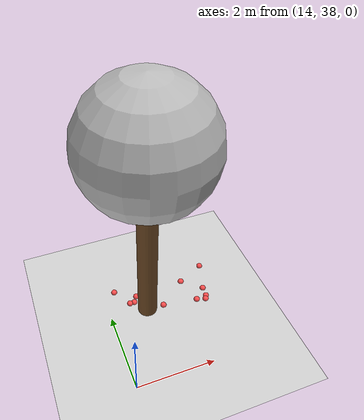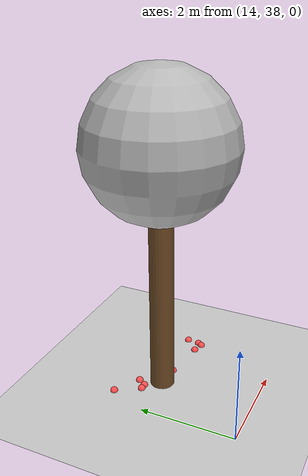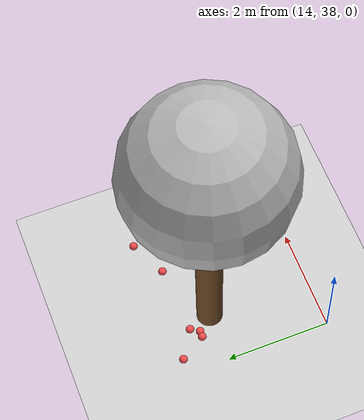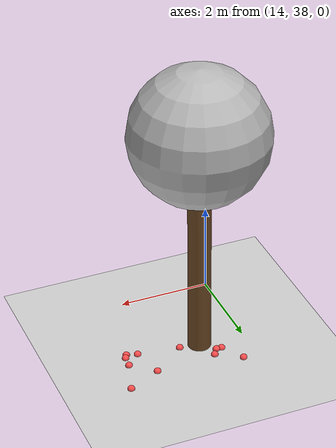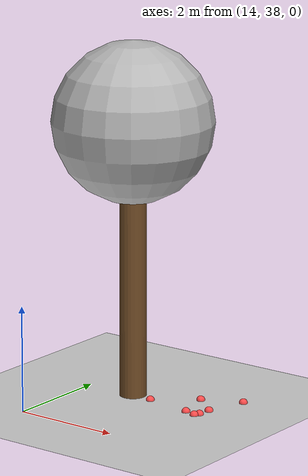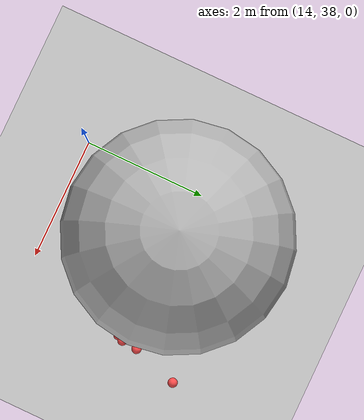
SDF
<sdf version="1.7">
 <world name="default">
  <model name="ground_plane">
   <static>1</static>
   <link name="link">
    <collision name="collision">
     <geometry><plane><normal>0 0 1</normal><size>100 100</size></plane></geometry>
     <surface>
      <contact><collide_bitmask>65535</collide_bitmask></contact>
      <friction><ode><mu>100</mu><mu2>50</mu2></ode></friction>
     </surface>
    </collision>
    <visual name="visual">
     <cast_shadows>0</cast_shadows>
     <geometry><plane><normal>0 0 1</normal><size>100 100</size></plane></geometry>
     <material>
      <script><uri>file://media/materials/scripts/gazebo.material</uri><name>Gazebo/Grey</name></script>
     </material>
    </visual>
   </link>
  </model>
  <model name="tree_simple_14">
   <static>1</static>
   <link name="link">
    <pose>0 0 0.1 0 -0 0</pose>
    <inertial>
     <mass>666</mass>
     <inertia>
      <ixx>0.0861167</ixx>
      <ixy>0</ixy>
      <ixz>0</ixz>
      <iyy>0.0861167</iyy>
      <iyz>0</iyz>
      <izz>0.0861167</izz>
     </inertia>
    </inertial>
    <collision name="collision_trunk">
     <pose>0 0 2 0 -0 0</pose>
     <geometry><cylinder><radius>0.25</radius><length>4</length></cylinder></geometry>
     <surface>
      <contact>
       <poissons_ratio>0.347</poissons_ratio>
       <elastic_modulus>8.8e+09</elastic_modulus>
       <ode><kp>100000</kp><kd>100</kd><max_vel>100</max_vel><min_depth>0.001</min_depth></ode>
      </contact>
      <friction>
       <torsional>
        <coefficient>1</coefficient>
        <use_patch_radius>0</use_patch_radius>
        <surface_radius>0.01</surface_radius>
       </torsional>
      </friction>
     </surface>
    </collision>
    <collision name="collision_treetop">
     <pose>0 0 5.2 0 -0 0</pose>
     <geometry><sphere><radius>1.5</radius></sphere></geometry>
     <surface>
      <contact>
       <poissons_ratio>0.347</poissons_ratio>
       <elastic_modulus>8.8e+09</elastic_modulus>
       <ode><kp>100000</kp><kd>100</kd><max_vel>100</max_vel><min_depth>0.001</min_depth></ode>
      </contact>
      <friction>
       <torsional>
        <coefficient>1</coefficient>
        <use_patch_radius>0</use_patch_radius>
        <surface_radius>0.01</surface_radius>
       </torsional>
      </friction>
     </surface>
    </collision>
    <visual name="trunk">
     <pose>0 0 2 0 -0 0</pose>
     <geometry><cylinder><radius>0.25</radius><length>4</length></cylinder></geometry>
     <material>
      <script>
       <uri>model://tree_simple/scripts</uri>
       <uri>model://tree_simple/materials/textures</uri>
       <name>TreeSimple/Trunk</name>
      </script>
     </material>
    </visual>
    <visual name="treetop">
     <pose>0 0 5.2 0 -0 0</pose>
     <geometry><sphere><radius>1.5</radius></sphere></geometry>
     <material>
      <script>
       <uri>model://tree_simple/scripts</uri>
       <uri>model://tree_simple/materials/textures</uri>
       <name>TreeSimple/Treetop</name>
      </script>
     </material>
    </visual>
   </link>
   <pose>15 40 -0.1 0 -0 0</pose>
  </model>
  <model name="seed_red_51">
   <link name="link">
    <inertial>
     <mass>1</mass>
     <inertia><ixx>0.1</ixx><ixy>0</ixy><ixz>0</ixz><iyy>0.1</iyy><iyz>0</iyz><izz>0.1</izz></inertia>
    </inertial>
    <visual name="visual">
     <geometry><sphere><radius>0.08</radius></sphere></geometry>
     <material>
      <script><name>Gazebo/Grey</name><uri>file://media/materials/scripts/gazebo.material</uri></script>
      <shader type="pixel"><normal_map>__default__</normal_map></shader>
      <ambient>1 0.3 0.3 1</ambient>
      <diffuse>0.7 0.7 0.7 1</diffuse>
      <specular>0.01 0.01 0.01 1</specular>
      <emissive>0 0 0 1</emissive>
     </material>
    </visual>
    <collision name="collision">
     <geometry><sphere><radius>0.0005</radius></sphere></geometry>
     <surface>
      <friction>
       <ode><mu>1</mu><mu2>1</mu2><fdir1>0 0 0</fdir1><slip1>0</slip1><slip2>0</slip2></ode>
       <torsional>
        <coefficient>1</coefficient>
        <patch_radius>0</patch_radius>
        <surface_radius>0</surface_radius>
        <use_patch_radius>1</use_patch_radius>
        <ode><slip>0</slip></ode>
       </torsional>
      </friction>
      <bounce><restitution_coefficient>0</restitution_coefficient><threshold>1e+06</threshold></bounce>
      <contact>
       <collide_without_contact>0</collide_without_contact>
       <collide_without_contact_bitmask>1</collide_without_contact_bitmask>
       <collide_bitmask>1</collide_bitmask>
       <ode>
        <soft_cfm>0</soft_cfm>
        <soft_erp>0.2</soft_erp>
        <kp>1e+13</kp>
        <kd>1</kd>
        <max_vel>0.01</max_vel>
        <min_depth>0</min_depth>
       </ode>
       <bullet>
        <split_impulse>1</split_impulse>
        <split_impulse_penetration_threshold>-0.01</split_impulse_penetration_threshold>
        <soft_cfm>0</soft_cfm>
        <soft_erp>0.2</soft_erp>
        <kp>1e+13</kp>
        <kd>1</kd>
       </bullet>
      </contact>
     </surface>
    </collision>
   </link>
   <static>0</static>
   <pose>14.8393 40.4631 0.0005 0 -0 0</pose>
  </model>
  <model name="seed_red_52">
   <link name="link">
    <inertial>
     <mass>1</mass>
     <inertia><ixx>0.1</ixx><ixy>0</ixy><ixz>0</ixz><iyy>0.1</iyy><iyz>0</iyz><izz>0.1</izz></inertia>
    </inertial>
    <visual name="visual">
     <geometry><sphere><radius>0.08</radius></sphere></geometry>
     <material>
      <script><name>Gazebo/Grey</name><uri>file://media/materials/scripts/gazebo.material</uri></script>
      <shader type="pixel"><normal_map>__default__</normal_map></shader>
      <ambient>1 0.3 0.3 1</ambient>
      <diffuse>0.7 0.7 0.7 1</diffuse>
      <specular>0.01 0.01 0.01 1</specular>
      <emissive>0 0 0 1</emissive>
     </material>
    </visual>
    <collision name="collision">
     <geometry><sphere><radius>0.0005</radius></sphere></geometry>
     <surface>
      <friction>
       <ode><mu>1</mu><mu2>1</mu2><fdir1>0 0 0</fdir1><slip1>0</slip1><slip2>0</slip2></ode>
       <torsional>
        <coefficient>1</coefficient>
        <patch_radius>0</patch_radius>
        <surface_radius>0</surface_radius>
        <use_patch_radius>1</use_patch_radius>
        <ode><slip>0</slip></ode>
       </torsional>
      </friction>
      <bounce><restitution_coefficient>0</restitution_coefficient><threshold>1e+06</threshold></bounce>
      <contact>
       <collide_without_contact>0</collide_without_contact>
       <collide_without_contact_bitmask>1</collide_without_contact_bitmask>
       <collide_bitmask>1</collide_bitmask>
       <ode>
        <soft_cfm>0</soft_cfm>
        <soft_erp>0.2</soft_erp>
        <kp>1e+13</kp>
        <kd>1</kd>
        <max_vel>0.01</max_vel>
        <min_depth>0</min_depth>
       </ode>
       <bullet>
        <split_impulse>1</split_impulse>
        <split_impulse_penetration_threshold>-0.01</split_impulse_penetration_threshold>
        <soft_cfm>0</soft_cfm>
        <soft_erp>0.2</soft_erp>
        <kp>1e+13</kp>
        <kd>1</kd>
       </bullet>
      </contact>
     </surface>
    </collision>
   </link>
   <static>0</static>
   <pose>14.3144 40.7948 0.0005 0 -0 0</pose>
  </model>
  <model name="seed_red_53">
   <link name="link">
    <inertial>
     <mass>1</mass>
     <inertia><ixx>0.1</ixx><ixy>0</ixy><ixz>0</ixz><iyy>0.1</iyy><iyz>0</iyz><izz>0.1</izz></inertia>
    </inertial>
    <visual name="visual">
     <geometry><sphere><radius>0.08</radius></sphere></geometry>
     <material>
      <script><name>Gazebo/Grey</name><uri>file://media/materials/scripts/gazebo.material</uri></script>
      <shader type="pixel"><normal_map>__default__</normal_map></shader>
      <ambient>1 0.3 0.3 1</ambient>
      <diffuse>0.7 0.7 0.7 1</diffuse>
      <specular>0.01 0.01 0.01 1</specular>
      <emissive>0 0 0 1</emissive>
     </material>
    </visual>
    <collision name="collision">
     <geometry><sphere><radius>0.0005</radius></sphere></geometry>
     <surface>
      <friction>
       <ode><mu>1</mu><mu2>1</mu2><fdir1>0 0 0</fdir1><slip1>0</slip1><slip2>0</slip2></ode>
       <torsional>
        <coefficient>1</coefficient>
        <patch_radius>0</patch_radius>
        <surface_radius>0</surface_radius>
        <use_patch_radius>1</use_patch_radius>
        <ode><slip>0</slip></ode>
       </torsional>
      </friction>
      <bounce><restitution_coefficient>0</restitution_coefficient><threshold>1e+06</threshold></bounce>
      <contact>
       <collide_without_contact>0</collide_without_contact>
       <collide_without_contact_bitmask>1</collide_without_contact_bitmask>
       <collide_bitmask>1</collide_bitmask>
       <ode>
        <soft_cfm>0</soft_cfm>
        <soft_erp>0.2</soft_erp>
        <kp>1e+13</kp>
        <kd>1</kd>
        <max_vel>0.01</max_vel>
        <min_depth>0</min_depth>
       </ode>
       <bullet>
        <split_impulse>1</split_impulse>
        <split_impulse_penetration_threshold>-0.01</split_impulse_penetration_threshold>
        <soft_cfm>0</soft_cfm>
        <soft_erp>0.2</soft_erp>
        <kp>1e+13</kp>
        <kd>1</kd>
       </bullet>
      </contact>
     </surface>
    </collision>
   </link>
   <static>0</static>
   <pose>14.7315 40.2999 0.0005 0 -0 0</pose>
  </model>
  <model name="seed_red_54">
   <link name="link">
    <inertial>
     <mass>1</mass>
     <inertia><ixx>0.1</ixx><ixy>0</ixy><ixz>0</ixz><iyy>0.1</iyy><iyz>0</iyz><izz>0.1</izz></inertia>
    </inertial>
    <visual name="visual">
     <geometry><sphere><radius>0.08</radius></sphere></geometry>
     <material>
      <script><name>Gazebo/Grey</name><uri>file://media/materials/scripts/gazebo.material</uri></script>
      <shader type="pixel"><normal_map>__default__</normal_map></shader>
      <ambient>1 0.3 0.3 1</ambient>
      <diffuse>0.7 0.7 0.7 1</diffuse>
      <specular>0.01 0.01 0.01 1</specular>
      <emissive>0 0 0 1</emissive>
     </material>
    </visual>
    <collision name="collision">
     <geometry><sphere><radius>0.0005</radius></sphere></geometry>
     <surface>
      <friction>
       <ode><mu>1</mu><mu2>1</mu2><fdir1>0 0 0</fdir1><slip1>0</slip1><slip2>0</slip2></ode>
       <torsional>
        <coefficient>1</coefficient>
        <patch_radius>0</patch_radius>
        <surface_radius>0</surface_radius>
        <use_patch_radius>1</use_patch_radius>
        <ode><slip>0</slip></ode>
       </torsional>
      </friction>
      <bounce><restitution_coefficient>0</restitution_coefficient><threshold>1e+06</threshold></bounce>
      <contact>
       <collide_without_contact>0</collide_without_contact>
       <collide_without_contact_bitmask>1</collide_without_contact_bitmask>
       <collide_bitmask>1</collide_bitmask>
       <ode>
        <soft_cfm>0</soft_cfm>
        <soft_erp>0.2</soft_erp>
        <kp>1e+13</kp>
        <kd>1</kd>
        <max_vel>0.01</max_vel>
        <min_depth>0</min_depth>
       </ode>
       <bullet>
        <split_impulse>1</split_impulse>
        <split_impulse_penetration_threshold>-0.01</split_impulse_penetration_threshold>
        <soft_cfm>0</soft_cfm>
        <soft_erp>0.2</soft_erp>
        <kp>1e+13</kp>
        <kd>1</kd>
       </bullet>
      </contact>
     </surface>
    </collision>
   </link>
   <static>0</static>
   <pose>14.6126 40.3013 0.0005 0 -0 0</pose>
  </model>
  <model name="seed_red_55">
   <link name="link">
    <inertial>
     <mass>1</mass>
     <inertia><ixx>0.1</ixx><ixy>0</ixy><ixz>0</ixz><iyy>0.1</iyy><iyz>0</iyz><izz>0.1</izz></inertia>
    </inertial>
    <visual name="visual">
     <geometry><sphere><radius>0.08</radius></sphere></geometry>
     <material>
      <script><name>Gazebo/Grey</name><uri>file://media/materials/scripts/gazebo.material</uri></script>
      <shader type="pixel"><normal_map>__default__</normal_map></shader>
      <ambient>1 0.3 0.3 1</ambient>
      <diffuse>0.7 0.7 0.7 1</diffuse>
      <specular>0.01 0.01 0.01 1</specular>
      <emissive>0 0 0 1</emissive>
     </material>
    </visual>
    <collision name="collision">
     <geometry><sphere><radius>0.0005</radius></sphere></geometry>
     <surface>
      <friction>
       <ode><mu>1</mu><mu2>1</mu2><fdir1>0 0 0</fdir1><slip1>0</slip1><slip2>0</slip2></ode>
       <torsional>
        <coefficient>1</coefficient>
        <patch_radius>0</patch_radius>
        <surface_radius>0</surface_radius>
        <use_patch_radius>1</use_patch_radius>
        <ode><slip>0</slip></ode>
       </torsional>
      </friction>
      <bounce><restitution_coefficient>0</restitution_coefficient><threshold>1e+06</threshold></bounce>
      <contact>
       <collide_without_contact>0</collide_without_contact>
       <collide_without_contact_bitmask>1</collide_without_contact_bitmask>
       <collide_bitmask>1</collide_bitmask>
       <ode>
        <soft_cfm>0</soft_cfm>
        <soft_erp>0.2</soft_erp>
        <kp>1e+13</kp>
        <kd>1</kd>
        <max_vel>0.01</max_vel>
        <min_depth>0</min_depth>
       </ode>
       <bullet>
        <split_impulse>1</split_impulse>
        <split_impulse_penetration_threshold>-0.01</split_impulse_penetration_threshold>
        <soft_cfm>0</soft_cfm>
        <soft_erp>0.2</soft_erp>
        <kp>1e+13</kp>
        <kd>1</kd>
       </bullet>
      </contact>
     </surface>
    </collision>
   </link>
   <static>0</static>
   <pose>16.1782 40.5229 0.0005 0 -0 0</pose>
  </model>
  <model name="seed_red_56">
   <link name="link">
    <inertial>
     <mass>1</mass>
     <inertia><ixx>0.1</ixx><ixy>0</ixy><ixz>0</ixz><iyy>0.1</iyy><iyz>0</iyz><izz>0.1</izz></inertia>
    </inertial>
    <visual name="visual">
     <geometry><sphere><radius>0.08</radius></sphere></geometry>
     <material>
      <script><name>Gazebo/Grey</name><uri>file://media/materials/scripts/gazebo.material</uri></script>
      <shader type="pixel"><normal_map>__default__</normal_map></shader>
      <ambient>1 0.3 0.3 1</ambient>
      <diffuse>0.7 0.7 0.7 1</diffuse>
      <specular>0.01 0.01 0.01 1</specular>
      <emissive>0 0 0 1</emissive>
     </material>
    </visual>
    <collision name="collision">
     <geometry><sphere><radius>0.0005</radius></sphere></geometry>
     <surface>
      <friction>
       <ode><mu>1</mu><mu2>1</mu2><fdir1>0 0 0</fdir1><slip1>0</slip1><slip2>0</slip2></ode>
       <torsional>
        <coefficient>1</coefficient>
        <patch_radius>0</patch_radius>
        <surface_radius>0</surface_radius>
        <use_patch_radius>1</use_patch_radius>
        <ode><slip>0</slip></ode>
       </torsional>
      </friction>
      <bounce><restitution_coefficient>0</restitution_coefficient><threshold>1e+06</threshold></bounce>
      <contact>
       <collide_without_contact>0</collide_without_contact>
       <collide_without_contact_bitmask>1</collide_without_contact_bitmask>
       <collide_bitmask>1</collide_bitmask>
       <ode>
        <soft_cfm>0</soft_cfm>
        <soft_erp>0.2</soft_erp>
        <kp>1e+13</kp>
        <kd>1</kd>
        <max_vel>0.01</max_vel>
        <min_depth>0</min_depth>
       </ode>
       <bullet>
        <split_impulse>1</split_impulse>
        <split_impulse_penetration_threshold>-0.01</split_impulse_penetration_threshold>
        <soft_cfm>0</soft_cfm>
        <soft_erp>0.2</soft_erp>
        <kp>1e+13</kp>
        <kd>1</kd>
       </bullet>
      </contact>
     </surface>
    </collision>
   </link>
   <static>0</static>
   <pose>15.4368 39.9526 0.0005 0 -0 0</pose>
  </model>
  <model name="seed_red_57">
   <link name="link">
    <inertial>
     <mass>1</mass>
     <inertia><ixx>0.1</ixx><ixy>0</ixy><ixz>0</ixz><iyy>0.1</iyy><iyz>0</iyz><izz>0.1</izz></inertia>
    </inertial>
    <visual name="visual">
     <geometry><sphere><radius>0.08</radius></sphere></geometry>
     <material>
      <script><name>Gazebo/Grey</name><uri>file://media/materials/scripts/gazebo.material</uri></script>
      <shader type="pixel"><normal_map>__default__</normal_map></shader>
      <ambient>1 0.3 0.3 1</ambient>
      <diffuse>0.7 0.7 0.7 1</diffuse>
      <specular>0.01 0.01 0.01 1</specular>
      <emissive>0 0 0 1</emissive>
     </material>
    </visual>
    <collision name="collision">
     <geometry><sphere><radius>0.0005</radius></sphere></geometry>
     <surface>
      <friction>
       <ode><mu>1</mu><mu2>1</mu2><fdir1>0 0 0</fdir1><slip1>0</slip1><slip2>0</slip2></ode>
       <torsional>
        <coefficient>1</coefficient>
        <patch_radius>0</patch_radius>
        <surface_radius>0</surface_radius>
        <use_patch_radius>1</use_patch_radius>
        <ode><slip>0</slip></ode>
       </torsional>
      </friction>
      <bounce><restitution_coefficient>0</restitution_coefficient><threshold>1e+06</threshold></bounce>
      <contact>
       <collide_without_contact>0</collide_without_contact>
       <collide_without_contact_bitmask>1</collide_without_contact_bitmask>
       <collide_bitmask>1</collide_bitmask>
       <ode>
        <soft_cfm>0</soft_cfm>
        <soft_erp>0.2</soft_erp>
        <kp>1e+13</kp>
        <kd>1</kd>
        <max_vel>0.01</max_vel>
        <min_depth>0</min_depth>
       </ode>
       <bullet>
        <split_impulse>1</split_impulse>
        <split_impulse_penetration_threshold>-0.01</split_impulse_penetration_threshold>
        <soft_cfm>0</soft_cfm>
        <soft_erp>0.2</soft_erp>
        <kp>1e+13</kp>
        <kd>1</kd>
       </bullet>
      </contact>
     </surface>
    </collision>
   </link>
   <static>0</static>
   <pose>16.6369 39.8442 0.0005 0 -0 0</pose>
  </model>
  <model name="seed_red_60">
   <link name="link">
    <inertial>
     <mass>1</mass>
     <inertia><ixx>0.1</ixx><ixy>0</ixy><ixz>0</ixz><iyy>0.1</iyy><iyz>0</iyz><izz>0.1</izz></inertia>
    </inertial>
    <visual name="visual">
     <geometry><sphere><radius>0.08</radius></sphere></geometry>
     <material>
      <script><name>Gazebo/Grey</name><uri>file://media/materials/scripts/gazebo.material</uri></script>
      <shader type="pixel"><normal_map>__default__</normal_map></shader>
      <ambient>1 0.3 0.3 1</ambient>
      <diffuse>0.7 0.7 0.7 1</diffuse>
      <specular>0.01 0.01 0.01 1</specular>
      <emissive>0 0 0 1</emissive>
     </material>
    </visual>
    <collision name="collision">
     <geometry><sphere><radius>0.0005</radius></sphere></geometry>
     <surface>
      <friction>
       <ode><mu>1</mu><mu2>1</mu2><fdir1>0 0 0</fdir1><slip1>0</slip1><slip2>0</slip2></ode>
       <torsional>
        <coefficient>1</coefficient>
        <patch_radius>0</patch_radius>
        <surface_radius>0</surface_radius>
        <use_patch_radius>1</use_patch_radius>
        <ode><slip>0</slip></ode>
       </torsional>
      </friction>
      <bounce><restitution_coefficient>0</restitution_coefficient><threshold>1e+06</threshold></bounce>
      <contact>
       <collide_without_contact>0</collide_without_contact>
       <collide_without_contact_bitmask>1</collide_without_contact_bitmask>
       <collide_bitmask>1</collide_bitmask>
       <ode>
        <soft_cfm>0</soft_cfm>
        <soft_erp>0.2</soft_erp>
        <kp>1e+13</kp>
        <kd>1</kd>
        <max_vel>0.01</max_vel>
        <min_depth>0</min_depth>
       </ode>
       <bullet>
        <split_impulse>1</split_impulse>
        <split_impulse_penetration_threshold>-0.01</split_impulse_penetration_threshold>
        <soft_cfm>0</soft_cfm>
        <soft_erp>0.2</soft_erp>
        <kp>1e+13</kp>
        <kd>1</kd>
       </bullet>
      </contact>
     </surface>
    </collision>
   </link>
   <static>0</static>
   <pose>16.3515 39.817 0.0005 0 -0 0</pose>
  </model>
  <model name="seed_red_61">
   <link name="link">
    <inertial>
     <mass>1</mass>
     <inertia><ixx>0.1</ixx><ixy>0</ixy><ixz>0</ixz><iyy>0.1</iyy><iyz>0</iyz><izz>0.1</izz></inertia>
    </inertial>
    <visual name="visual">
     <geometry><sphere><radius>0.08</radius></sphere></geometry>
     <material>
      <script><name>Gazebo/Grey</name><uri>file://media/materials/scripts/gazebo.material</uri></script>
      <shader type="pixel"><normal_map>__default__</normal_map></shader>
      <ambient>1 0.3 0.3 1</ambient>
      <diffuse>0.7 0.7 0.7 1</diffuse>
      <specular>0.01 0.01 0.01 1</specular>
      <emissive>0 0 0 1</emissive>
     </material>
    </visual>
    <collision name="collision">
     <geometry><sphere><radius>0.0005</radius></sphere></geometry>
     <surface>
      <friction>
       <ode><mu>1</mu><mu2>1</mu2><fdir1>0 0 0</fdir1><slip1>0</slip1><slip2>0</slip2></ode>
       <torsional>
        <coefficient>1</coefficient>
        <patch_radius>0</patch_radius>
        <surface_radius>0</surface_radius>
        <use_patch_radius>1</use_patch_radius>
        <ode><slip>0</slip></ode>
       </torsional>
      </friction>
      <bounce><restitution_coefficient>0</restitution_coefficient><threshold>1e+06</threshold></bounce>
      <contact>
       <collide_without_contact>0</collide_without_contact>
       <collide_without_contact_bitmask>1</collide_without_contact_bitmask>
       <collide_bitmask>1</collide_bitmask>
       <ode>
        <soft_cfm>0</soft_cfm>
        <soft_erp>0.2</soft_erp>
        <kp>1e+13</kp>
        <kd>1</kd>
        <max_vel>0.01</max_vel>
        <min_depth>0</min_depth>
       </ode>
       <bullet>
        <split_impulse>1</split_impulse>
        <split_impulse_penetration_threshold>-0.01</split_impulse_penetration_threshold>
        <soft_cfm>0</soft_cfm>
        <soft_erp>0.2</soft_erp>
        <kp>1e+13</kp>
        <kd>1</kd>
       </bullet>
      </contact>
     </surface>
    </collision>
   </link>
   <static>0</static>
   <pose>16.6609 40.1064 0.0005 0 -0 0</pose>
  </model>
  <model name="seed_red_62">
   <link name="link">
    <inertial>
     <mass>1</mass>
     <inertia><ixx>0.1</ixx><ixy>0</ixy><ixz>0</ixz><iyy>0.1</iyy><iyz>0</iyz><izz>0.1</izz></inertia>
    </inertial>
    <visual name="visual">
     <geometry><sphere><radius>0.08</radius></sphere></geometry>
     <material>
      <script><name>Gazebo/Grey</name><uri>file://media/materials/scripts/gazebo.material</uri></script>
      <shader type="pixel"><normal_map>__default__</normal_map></shader>
      <ambient>1 0.3 0.3 1</ambient>
      <diffuse>0.7 0.7 0.7 1</diffuse>
      <specular>0.01 0.01 0.01 1</specular>
      <emissive>0 0 0 1</emissive>
     </material>
    </visual>
    <collision name="collision">
     <geometry><sphere><radius>0.0005</radius></sphere></geometry>
     <surface>
      <friction>
       <ode><mu>1</mu><mu2>1</mu2><fdir1>0 0 0</fdir1><slip1>0</slip1><slip2>0</slip2></ode>
       <torsional>
        <coefficient>1</coefficient>
        <patch_radius>0</patch_radius>
        <surface_radius>0</surface_radius>
        <use_patch_radius>1</use_patch_radius>
        <ode><slip>0</slip></ode>
       </torsional>
      </friction>
      <bounce><restitution_coefficient>0</restitution_coefficient><threshold>1e+06</threshold></bounce>
      <contact>
       <collide_without_contact>0</collide_without_contact>
       <collide_without_contact_bitmask>1</collide_without_contact_bitmask>
       <collide_bitmask>1</collide_bitmask>
       <ode>
        <soft_cfm>0</soft_cfm>
        <soft_erp>0.2</soft_erp>
        <kp>1e+13</kp>
        <kd>1</kd>
        <max_vel>0.01</max_vel>
        <min_depth>0</min_depth>
       </ode>
       <bullet>
        <split_impulse>1</split_impulse>
        <split_impulse_penetration_threshold>-0.01</split_impulse_penetration_threshold>
        <soft_cfm>0</soft_cfm>
        <soft_erp>0.2</soft_erp>
        <kp>1e+13</kp>
        <kd>1</kd>
       </bullet>
      </contact>
     </surface>
    </collision>
   </link>
   <static>0</static>
   <pose>16.902 40.8585 0.0005 0 -0 0</pose>
  </model>
  <model name="seed_red_64">
   <link name="link">
    <inertial>
     <mass>1</mass>
     <inertia><ixx>0.1</ixx><ixy>0</ixy><ixz>0</ixz><iyy>0.1</iyy><iyz>0</iyz><izz>0.1</izz></inertia>
    </inertial>
    <visual name="visual">
     <geometry><sphere><radius>0.08</radius></sphere></geometry>
     <material>
      <script><name>Gazebo/Grey</name><uri>file://media/materials/scripts/gazebo.material</uri></script>
      <shader type="pixel"><normal_map>__default__</normal_map></shader>
      <ambient>1 0.3 0.3 1</ambient>
      <diffuse>0.7 0.7 0.7 1</diffuse>
      <specular>0.01 0.01 0.01 1</specular>
      <emissive>0 0 0 1</emissive>
     </material>
    </visual>
    <collision name="collision">
     <geometry><sphere><radius>0.0005</radius></sphere></geometry>
     <surface>
      <friction>
       <ode><mu>1</mu><mu2>1</mu2><fdir1>0 0 0</fdir1><slip1>0</slip1><slip2>0</slip2></ode>
       <torsional>
        <coefficient>1</coefficient>
        <patch_radius>0</patch_radius>
        <surface_radius>0</surface_radius>
        <use_patch_radius>1</use_patch_radius>
        <ode><slip>0</slip></ode>
       </torsional>
      </friction>
      <bounce><restitution_coefficient>0</restitution_coefficient><threshold>1e+06</threshold></bounce>
      <contact>
       <collide_without_contact>0</collide_without_contact>
       <collide_without_contact_bitmask>1</collide_without_contact_bitmask>
       <collide_bitmask>1</collide_bitmask>
       <ode>
        <soft_cfm>0</soft_cfm>
        <soft_erp>0.2</soft_erp>
        <kp>1e+13</kp>
        <kd>1</kd>
        <max_vel>0.01</max_vel>
        <min_depth>0</min_depth>
       </ode>
       <bullet>
        <split_impulse>1</split_impulse>
        <split_impulse_penetration_threshold>-0.01</split_impulse_penetration_threshold>
        <soft_cfm>0</soft_cfm>
        <soft_erp>0.2</soft_erp>
        <kp>1e+13</kp>
        <kd>1</kd>
       </bullet>
      </contact>
     </surface>
    </collision>
   </link>
   <static>0</static>
   <pose>16.5843 39.7507 0.0005 0 -0 0</pose>
  </model>
 </world>
</sdf>
